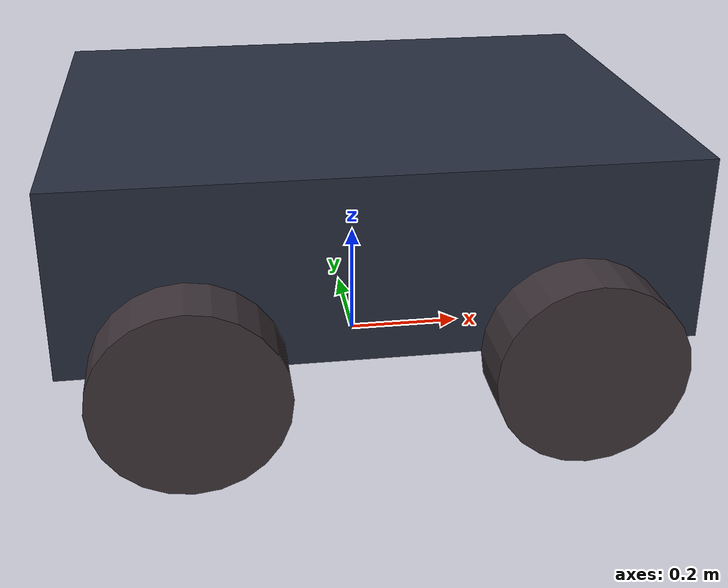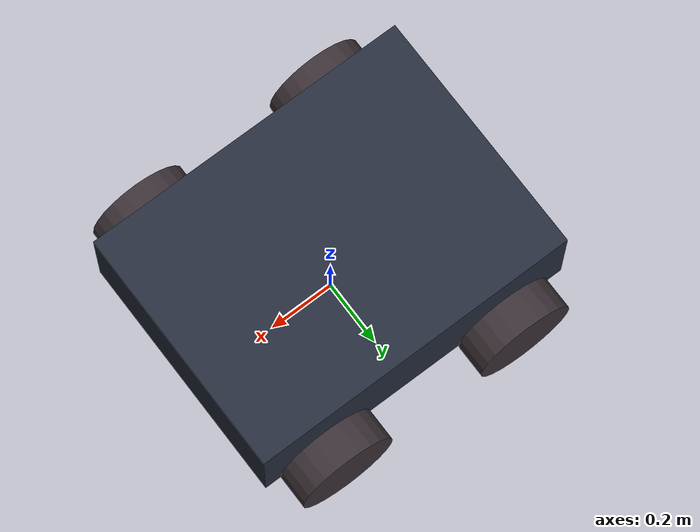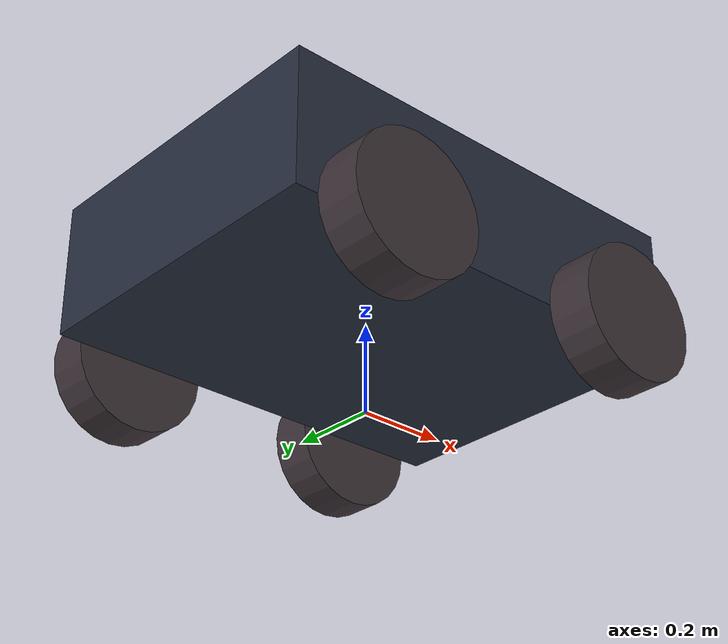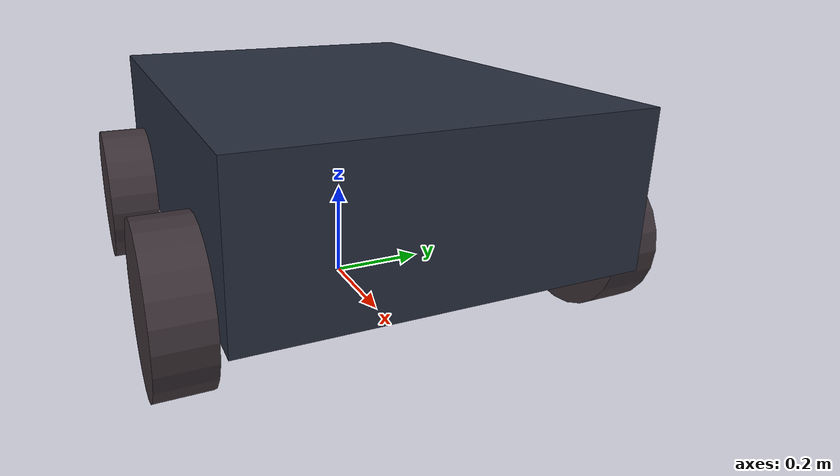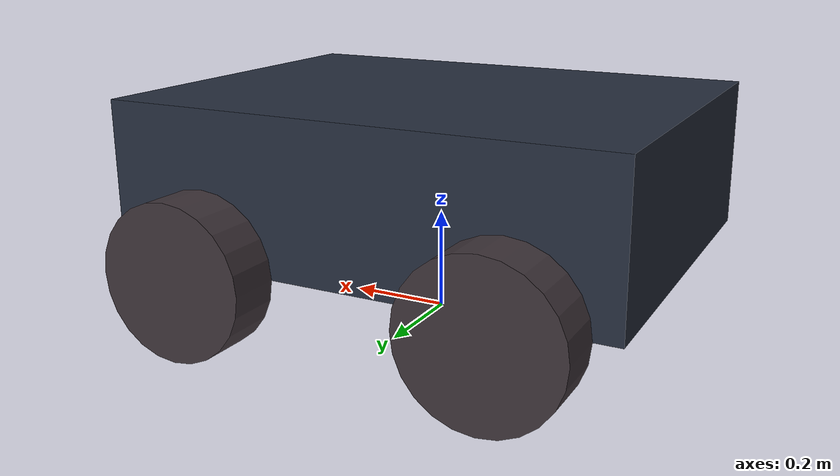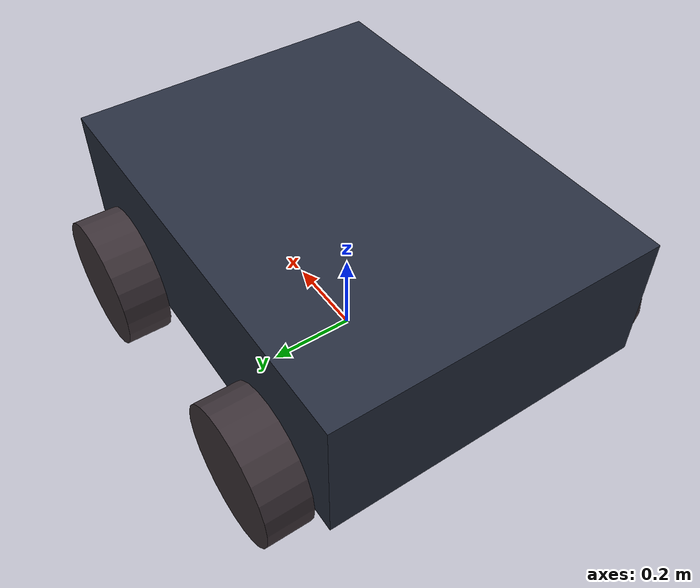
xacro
<?xml version="1.0"?>
<robot xmlns:xacro="http://www.ros.org/wiki/xacro" >

    <!-- colors -->
    <material name="white">
        <color rgba="1 1 1 1" />
    </material>

    <material name="blue">
        <color rgba="0.150 0.178 0.242 1"/>
    </material>

    <material name="pink">
        <color rgba="0.237 0.199 0.220 1"/>
    </material>

    <material name="black">
        <color rgba="0 0 0 1"/>
    </material>

    <material name = "gray">
        <color rgba = "0.05 0.05 0.05 1"/>
    </material>

    <!-- Defining robot constants -->

    <xacro:property name = "pi_const" value = "3.14159265" />

    <!-- modifier -->
    <xacro:property name = "m" value = "1" />

    <!-- chassis dimensions -->
    <xacro:property name = "l" value = "${m*1}" />
    <xacro:property name = "h" value = "${m*0.3}" />
    <xacro:property name = "w" value = "${m*0.75}" />

    <!-- wheel radius and diameter -->
    <xacro:property name = "r" value = "${m*0.15}" />
    <xacro:property name = "d" value = "${m*0.1}" />

    <!-- other dimensions (look at aleks's vid for the full picture)-->
    <xacro:property name = "s1" value = "${h/2 + r}" />
    <xacro:property name = "s2" value = "${2*r}" />
    <xacro:property name = "s3" value = "${2*r}" />
    <xacro:property name = "s4" value = "${w/2 + d/2}" />

    <!-- Defining mass and inertial properites -->

    <!-- material densities -->
    <xacro:property name = "bodyDensity" value = "2710.0" />
    <xacro:property name = "wheelDensity" value = "2710.0" />

    <!-- mass -->
    <xacro:property name = "bodyMass" value = "${bodyDensity*l*h*w}" />
    <xacro:property name = "wheelMass" value = "${wheelDensity*pi_const*r*r*d}" />

    <!-- moments of inertia -->

    <xacro:property name = "Ix_body" value = "${(1/12)*bodyMass*(h*h + w*w)}" />
    <xacro:property name = "Iy_body" value = "${(1/12)*bodyMass*(l*l + h*h)}" />
    <xacro:property name = "Iz_body" value = "${(1/12)*bodyMass*(l*l + w*w)}" />

    <xacro:property name = "Iz_wheel" value = "${0.5*wheelMass*r*r}" />
    <xacro:property name = "I_wheel" value = "${(1.0/12.0)*wheelMass*(3.0*r*r + d*d)}" />

    <!-- inertial macros -->

    <xacro:macro name = "inertia_body">
        <inertial>
            <origin rpy = "0 0 0" xyz = "0 0 ${s1}" />
            <mass value = "${bodyMass}" />
            <inertia ixx = "${Ix_body}" ixy = "0.0" ixz = "0.0" iyy = "${Iy_body}" iyz = "0" izz = "${Iz_body}" />
        </inertial>
    </xacro:macro>

    <xacro:macro name = "inertia_wheel">
        <inertial>
            <origin rpy = "1.570795 0 0" xyz = "0 0 0" />
            <mass value = "${wheelMass}" />
            <inertia ixx = "${I_wheel}" ixy = "0.0" ixz = "0.0" iyy = "${I_wheel}" iyz = "0" izz = "${Iz_wheel}" />
        </inertial>
    </xacro:macro>

    <!-- Including additional files -->

    <xacro:include filename = "$(find pkg_binx)/description/robot.gazebo" />

    <!-- Defining links & joints -->

    <!-- fictitious link -->
    <link name = "base_footprint">
    </link>
    <joint name = "base_link_joint" type = "fixed">
        <parent link = "base_footprint" />
        <child link = "base_link" />
    </joint>

    <!-- body link -->
    <!-- *figure out if you need to change the origin's x value to -0.1 or sum* -->
    <link name = "base_link">
        <visual>
            <origin rpy = "0 0 0" xyz = "0 0 ${s1}" />
            <geometry>
                <box size = "${l} ${w} ${h}" />
            </geometry>
            <material name = "blue" />
        </visual>

        <collision>
            <origin rpy = "0 0 0" xyz = "0 0 ${s1}" />
            <geometry>
                <box size = "${l} ${w} ${h}" />
            </geometry>
        </collision>

        <xacro:inertia_body />
    </link>

    <!-- right wheel rear link -->
    <!-- remember to make the limit effort more realistic later... -->
    <joint name= "wheel1_joint" type = "continuous">
        <parent link = "base_link" />
        <child link = "wheel1_link" />
        <origin xyz = "${-s2} ${-s4} ${r}" rpy = "0 0 0" />
        <axis xyz = "0 1 0" />
        <limit effort = "50000" velocity = "10" />
        <dynamics damping = "0.05" friction = "0.0" />
    </joint>

    <link name = "wheel1_link">
        <visual>
            <origin rpy = "1.570795 0 0" xyz = "0 0 0" />
            <geometry>
                <cylinder length = "${d}" radius = "${r}" />
            </geometry>
            <material name = "pink" />
        </visual>

        <collision name = "wheel1_collision">
            <origin rpy = "1.57095 0 0" xyz = "0 0 0" />
            <geometry>
                <cylinder length = "${d}" radius = "${r}" />
            </geometry>
            <surface>
                <friction>
                    <ode>
                        <mu>2.0</mu>
                        <mu2>0.5</mu2>
                        <fdir1>-1 -1 0</fdir1>
                    </ode>
                </friction>
                <contact>
                    <ode>
                        <kp>1000000.0</kp>
                        <kd>100.0</kd>
                        <min_depth>0.001</min_depth>
                        <max_vel>0.1</max_vel>
                    </ode>
                </contact>
            </surface>
        </collision>

        <xacro:inertia_wheel />
    </link>

    <!-- left wheel rear link -->
    <!-- remember to make the limit effort more realistic later... -->
    <joint name= "wheel2_joint" type = "continuous">
        <parent link = "base_link" />
        <child link = "wheel2_link" />
        <origin xyz = "${-s2} ${s4} ${r}" rpy = "0 0 0" />
        <axis xyz = "0 1 0" />
        <limit effort = "50000" velocity = "10" />
        <dynamics damping = "0.05" friction = "0.0" />
    </joint>

    <link name = "wheel2_link">
        <visual>
            <origin rpy = "1.570795 0 0" xyz = "0 0 0" />
            <geometry>
                <cylinder length = "${d}" radius = "${r}" />
            </geometry>
            <material name = "pink" />
        </visual>

        <collision name = "wheel2_collision">
            <origin rpy = "1.57095 0 0" xyz = "0 0 0" />
            <geometry>
                <cylinder length = "${d}" radius = "${r}" />
            </geometry>
            <surface>
                <friction>
                    <ode>
                        <mu>2.0</mu>
                        <mu2>0.5</mu2>
                        <fdir1>-1 1 0</fdir1>
                    </ode>
                </friction>
                <contact>
                    <ode>
                        <kp>1000000.0</kp>
                        <kd>100.0</kd>
                        <min_depth>0.001</min_depth>
                        <max_vel>0.1</max_vel>
                    </ode>
                </contact>
            </surface>
        </collision>

        <xacro:inertia_wheel />
    </link>

    <!-- right wheel forward link -->
    <joint name= "wheel3_joint" type = "continuous">
        <parent link = "base_link" />
        <child link = "wheel3_link" />
        <origin xyz = "${s2} ${-s4} ${r}" rpy = "0 0 0" />
        <axis xyz = "0 1 0" />
        <limit effort = "50000" velocity = "10" />
        <dynamics damping = "0.05" friction = "0.0" />
    </joint>

    <link name = "wheel3_link">
        <visual>
            <origin rpy = "1.570795 0 0" xyz = "0 0 0" />
            <geometry>
                <cylinder length = "${d}" radius = "${r}" />
            </geometry>
            <material name = "pink" />
        </visual>

        <collision name = "wheel3_collision">
            <origin rpy = "1.57095 0 0" xyz = "0 0 0" />
            <geometry>
                <cylinder length = "${d}" radius = "${r}" />
            </geometry>
            <surface>
                <friction>
                    <ode>
                        <mu>2.0</mu>
                        <mu2>0.5</mu2>
                        <fdir1>1 -1 0</fdir1>
                    </ode>
                </friction>
                <contact>
                    <ode>
                        <kp>1000000.0</kp>
                        <kd>100.0</kd>
                        <min_depth>0.001</min_depth>
                        <max_vel>0.1</max_vel>
                    </ode>
                </contact>
            </surface>
        </collision>

        <xacro:inertia_wheel />
    </link>

    <!-- left wheel forward link -->
    <joint name= "wheel4_joint" type = "continuous">
        <parent link = "base_link" />
        <child link = "wheel4_link" />
        <origin xyz = "${s2} ${s4} ${r}" rpy = "0 0 0" />
        <axis xyz = "0 1 0" />
        <limit effort = "50000" velocity = "10" />
        <dynamics damping = "0.05" friction = "0.0" />
    </joint>

    <link name = "wheel4_link">
        <visual>
            <origin rpy = "1.570795 0 0" xyz = "0 0 0" />
            <geometry>
                <cylinder length = "${d}" radius = "${r}" />
            </geometry>
            <material name = "pink" />
        </visual>

        <collision name = "wheel4_collision">
            <origin rpy = "1.57095 0 0" xyz = "0 0 0" />
            <geometry>
                <cylinder length = "${d}" radius = "${r}" />
            </geometry>
            <surface>
                <friction>
                    <ode>
                        <mu>2.0</mu>
                        <mu2>0.5</mu2>
                        <fdir1>1 1 0</fdir1>
                    </ode>
                </friction>
                <contact>
                    <ode>
                        <kp>1000000.0</kp>
                        <kd>100.0</kd>
                        <min_depth>0.001</min_depth>
                        <max_vel>0.1</max_vel>
                    </ode>
                </contact>
            </surface>
        </collision>

        <xacro:inertia_wheel />
    </link>

</robot>
